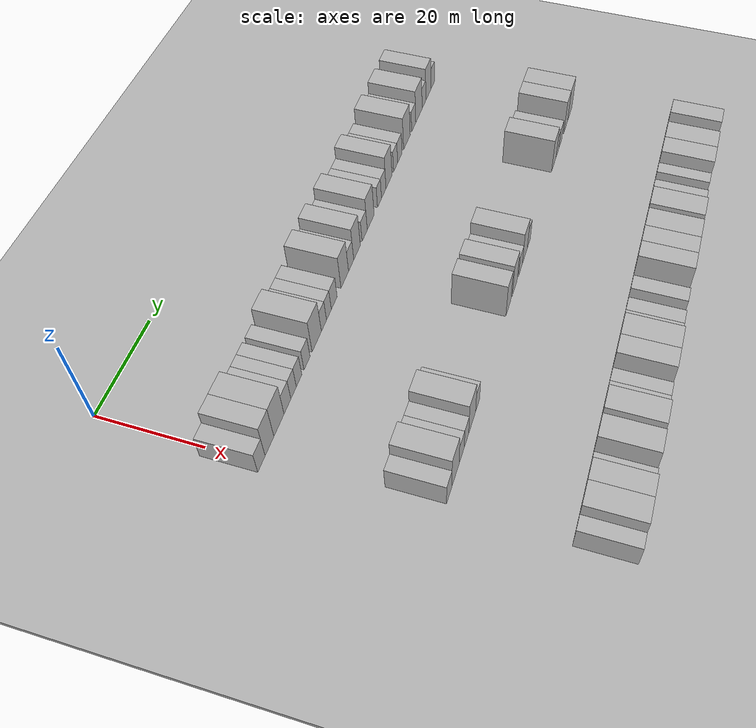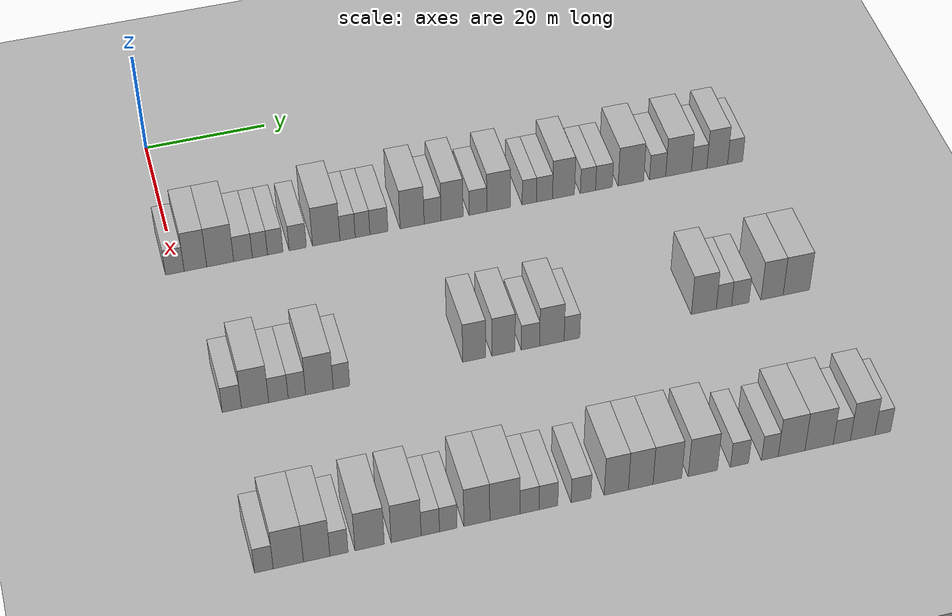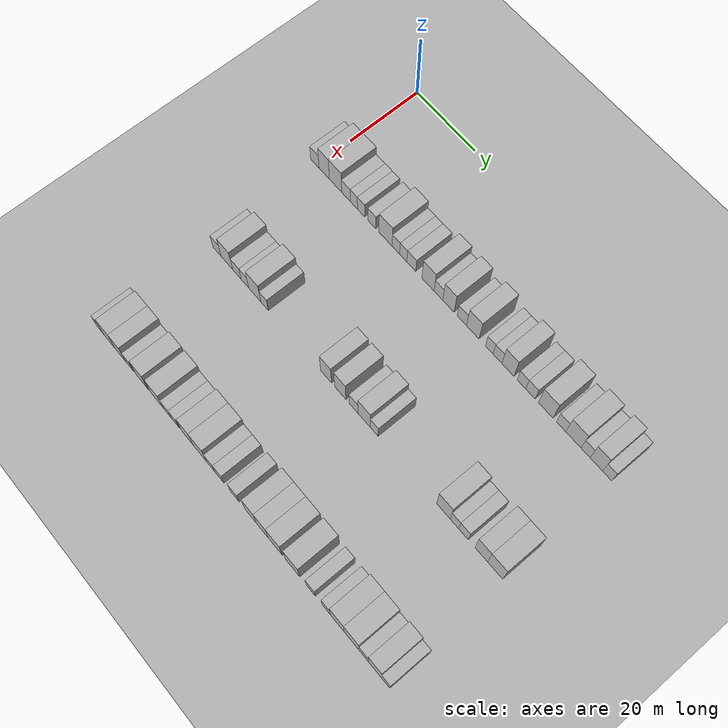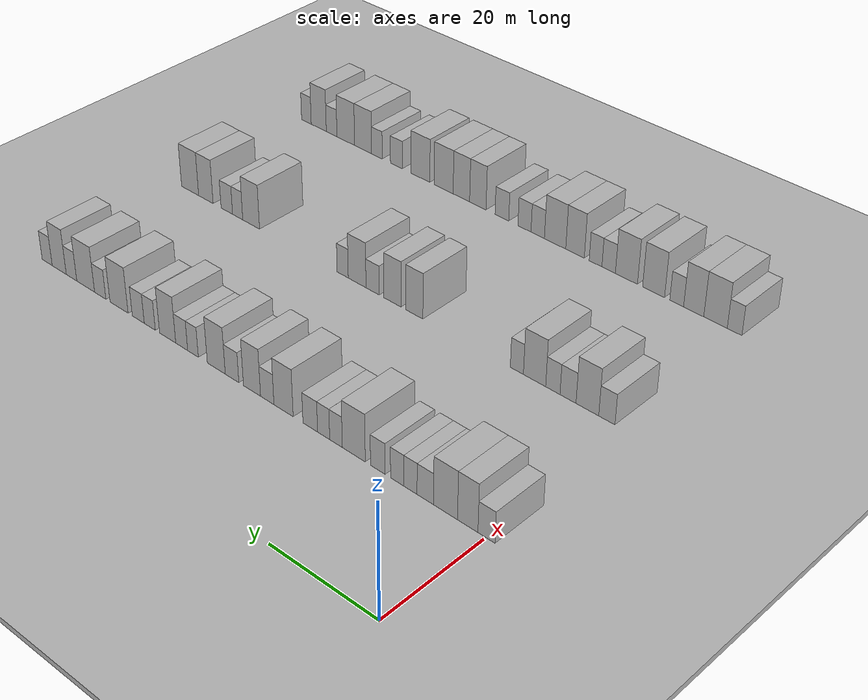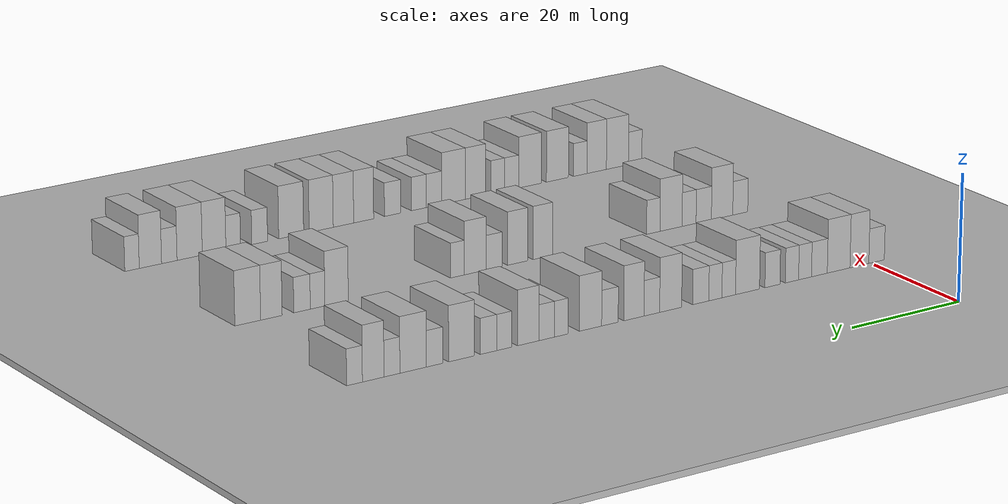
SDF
<sdf version="1.6">
 <world name="default">
  <include><name>ground_plane_1</name><uri>model://HANNAS_ground_plane</uri></include>
  <include>
   <name>ground_plane_2</name>
   <uri>model://HANNAS_ground_plane</uri>
   <pose>100 0 0  0 0 0</pose>
  </include>
  <model name="building_64">
   <static>1</static>
   <pose>25.0000 -0.3750 0 0.000000 0.000000 0.000000</pose>
   <link name="link">
    <pose>0 0 3.00 0 0 0</pose>
    <collision name="collision"><geometry><box><size>10.0000 2.9898 6.0000</size></box></geometry></collision>
    <visual name="visual">
     <cast_shadows>0</cast_shadows>
     <geometry><box><size>10.0000 2.9898 6.0000</size></box></geometry>
     <material>
      <script>
       <uri>model://HANNAS_wall/materials/scripts</uri>
       <uri>model://HANNAS_wall/materials/textures</uri>
       <name>vrc/HANNAS_wall</name>
      </script>
     </material>
    </visual>
   </link>
  </model>
  <model name="building_65">
   <static>1</static>
   <pose>25.0000 2.9271 0 0.000000 0.000000 0.000000</pose>
   <link name="link">
    <pose>0 0 4.50 0 0 0</pose>
    <collision name="collision"><geometry><box><size>10.0000 3.6144 9.0000</size></box></geometry></collision>
    <visual name="visual">
     <cast_shadows>0</cast_shadows>
     <geometry><box><size>10.0000 3.6144 9.0000</size></box></geometry>
     <material>
      <script>
       <uri>model://HANNAS_wall/materials/scripts</uri>
       <uri>model://HANNAS_wall/materials/textures</uri>
       <name>vrc/HANNAS_wall</name>
      </script>
     </material>
    </visual>
   </link>
  </model>
  <model name="building_66">
   <static>1</static>
   <pose>25.0000 6.8996 0 0.000000 0.000000 0.000000</pose>
   <link name="link">
    <pose>0 0 4.50 0 0 0</pose>
    <collision name="collision"><geometry><box><size>10.0000 4.3306 9.0000</size></box></geometry></collision>
    <visual name="visual">
     <cast_shadows>0</cast_shadows>
     <geometry><box><size>10.0000 4.3306 9.0000</size></box></geometry>
     <material>
      <script>
       <uri>model://HANNAS_wall/materials/scripts</uri>
       <uri>model://HANNAS_wall/materials/textures</uri>
       <name>vrc/HANNAS_wall</name>
      </script>
     </material>
    </visual>
   </link>
  </model>
  <model name="building_67">
   <static>1</static>
   <pose>25.0000 10.5646 0 0.000000 0.000000 0.000000</pose>
   <link name="link">
    <pose>0 0 3.00 0 0 0</pose>
    <collision name="collision"><geometry><box><size>10.0000 2.9992 6.0000</size></box></geometry></collision>
    <visual name="visual">
     <cast_shadows>0</cast_shadows>
     <geometry><box><size>10.0000 2.9992 6.0000</size></box></geometry>
     <material>
      <script>
       <uri>model://HANNAS_wall/materials/scripts</uri>
       <uri>model://HANNAS_wall/materials/textures</uri>
       <name>vrc/HANNAS_wall</name>
      </script>
     </material>
    </visual>
   </link>
  </model>
  <model name="building_68">
   <static>1</static>
   <pose>25.0000 13.2816 0 0.000000 0.000000 0.000000</pose>
   <link name="link">
    <pose>0 0 3.00 0 0 0</pose>
    <collision name="collision"><geometry><box><size>10.0000 2.4350 6.0000</size></box></geometry></collision>
    <visual name="visual">
     <cast_shadows>0</cast_shadows>
     <geometry><box><size>10.0000 2.4350 6.0000</size></box></geometry>
     <material>
      <script>
       <uri>model://HANNAS_wall/materials/scripts</uri>
       <uri>model://HANNAS_wall/materials/textures</uri>
       <name>vrc/HANNAS_wall</name>
      </script>
     </material>
    </visual>
   </link>
  </model>
  <model name="building_69">
   <static>1</static>
   <pose>25.0000 15.7519 0 0.000000 0.000000 0.000000</pose>
   <link name="link">
    <pose>0 0 3.00 0 0 0</pose>
    <collision name="collision"><geometry><box><size>10.0000 2.5056 6.0000</size></box></geometry></collision>
    <visual name="visual">
     <cast_shadows>0</cast_shadows>
     <geometry><box><size>10.0000 2.5056 6.0000</size></box></geometry>
     <material>
      <script>
       <uri>model://HANNAS_wall/materials/scripts</uri>
       <uri>model://HANNAS_wall/materials/textures</uri>
       <name>vrc/HANNAS_wall</name>
      </script>
     </material>
    </visual>
   </link>
  </model>
  <model name="building_70">
   <static>1</static>
   <pose>25.0000 19.4091 0 0.000000 0.000000 0.000000</pose>
   <link name="link">
    <pose>0 0 3.00 0 0 0</pose>
    <collision name="collision"><geometry><box><size>10.0000 2.8088 6.0000</size></box></geometry></collision>
    <visual name="visual">
     <cast_shadows>0</cast_shadows>
     <geometry><box><size>10.0000 2.8088 6.0000</size></box></geometry>
     <material>
      <script>
       <uri>model://HANNAS_wall/materials/scripts</uri>
       <uri>model://HANNAS_wall/materials/textures</uri>
       <name>vrc/HANNAS_wall</name>
      </script>
     </material>
    </visual>
   </link>
  </model>
  <model name="building_71">
   <static>1</static>
   <pose>25.0000 24.0457 0 0.000000 0.000000 0.000000</pose>
   <link name="link">
    <pose>0 0 4.50 0 0 0</pose>
    <collision name="collision"><geometry><box><size>10.0000 4.4645 9.0000</size></box></geometry></collision>
    <visual name="visual">
     <cast_shadows>0</cast_shadows>
     <geometry><box><size>10.0000 4.4645 9.0000</size></box></geometry>
     <material>
      <script>
       <uri>model://HANNAS_wall/materials/scripts</uri>
       <uri>model://HANNAS_wall/materials/textures</uri>
       <name>vrc/HANNAS_wall</name>
      </script>
     </material>
    </visual>
   </link>
  </model>
  <model name="building_72">
   <static>1</static>
   <pose>25.0000 27.5315 0 0.000000 0.000000 0.000000</pose>
   <link name="link">
    <pose>0 0 3.00 0 0 0</pose>
    <collision name="collision"><geometry><box><size>10.0000 2.5071 6.0000</size></box></geometry></collision>
    <visual name="visual">
     <cast_shadows>0</cast_shadows>
     <geometry><box><size>10.0000 2.5071 6.0000</size></box></geometry>
     <material>
      <script>
       <uri>model://HANNAS_wall/materials/scripts</uri>
       <uri>model://HANNAS_wall/materials/textures</uri>
       <name>vrc/HANNAS_wall</name>
      </script>
     </material>
    </visual>
   </link>
  </model>
  <model name="building_73">
   <static>1</static>
   <pose>25.0000 29.9911 0 0.000000 0.000000 0.000000</pose>
   <link name="link">
    <pose>0 0 3.00 0 0 0</pose>
    <collision name="collision"><geometry><box><size>10.0000 2.4120 6.0000</size></box></geometry></collision>
    <visual name="visual">
     <cast_shadows>0</cast_shadows>
     <geometry><box><size>10.0000 2.4120 6.0000</size></box></geometry>
     <material>
      <script>
       <uri>model://HANNAS_wall/materials/scripts</uri>
       <uri>model://HANNAS_wall/materials/textures</uri>
       <name>vrc/HANNAS_wall</name>
      </script>
     </material>
    </visual>
   </link>
  </model>
  <model name="building_74">
   <static>1</static>
   <pose>25.0000 32.6815 0 0.000000 0.000000 0.000000</pose>
   <link name="link">
    <pose>0 0 3.00 0 0 0</pose>
    <collision name="collision"><geometry><box><size>10.0000 2.9688 6.0000</size></box></geometry></collision>
    <visual name="visual">
     <cast_shadows>0</cast_shadows>
     <geometry><box><size>10.0000 2.9688 6.0000</size></box></geometry>
     <material>
      <script>
       <uri>model://HANNAS_wall/materials/scripts</uri>
       <uri>model://HANNAS_wall/materials/textures</uri>
       <name>vrc/HANNAS_wall</name>
      </script>
     </material>
    </visual>
   </link>
  </model>
  <model name="building_75">
   <static>1</static>
   <pose>25.0000 38.1623 0 0.000000 0.000000 0.000000</pose>
   <link name="link">
    <pose>0 0 4.50 0 0 0</pose>
    <collision name="collision"><geometry><box><size>10.0000 3.9928 9.0000</size></box></geometry></collision>
    <visual name="visual">
     <cast_shadows>0</cast_shadows>
     <geometry><box><size>10.0000 3.9928 9.0000</size></box></geometry>
     <material>
      <script>
       <uri>model://HANNAS_wall/materials/scripts</uri>
       <uri>model://HANNAS_wall/materials/textures</uri>
       <name>vrc/HANNAS_wall</name>
      </script>
     </material>
    </visual>
   </link>
  </model>
  <model name="building_76">
   <static>1</static>
   <pose>25.0000 41.5678 0 0.000000 0.000000 0.000000</pose>
   <link name="link">
    <pose>0 0 3.00 0 0 0</pose>
    <collision name="collision"><geometry><box><size>10.0000 2.8180 6.0000</size></box></geometry></collision>
    <visual name="visual">
     <cast_shadows>0</cast_shadows>
     <geometry><box><size>10.0000 2.8180 6.0000</size></box></geometry>
     <material>
      <script>
       <uri>model://HANNAS_wall/materials/scripts</uri>
       <uri>model://HANNAS_wall/materials/textures</uri>
       <name>vrc/HANNAS_wall</name>
      </script>
     </material>
    </visual>
   </link>
  </model>
  <model name="building_77">
   <static>1</static>
   <pose>25.0000 44.7982 0 0.000000 0.000000 0.000000</pose>
   <link name="link">
    <pose>0 0 4.50 0 0 0</pose>
    <collision name="collision"><geometry><box><size>10.0000 3.6429 9.0000</size></box></geometry></collision>
    <visual name="visual">
     <cast_shadows>0</cast_shadows>
     <geometry><box><size>10.0000 3.6429 9.0000</size></box></geometry>
     <material>
      <script>
       <uri>model://HANNAS_wall/materials/scripts</uri>
       <uri>model://HANNAS_wall/materials/textures</uri>
       <name>vrc/HANNAS_wall</name>
      </script>
     </material>
    </visual>
   </link>
  </model>
  <model name="building_78">
   <static>1</static>
   <pose>25.0000 49.0955 0 0.000000 0.000000 0.000000</pose>
   <link name="link">
    <pose>0 0 3.00 0 0 0</pose>
    <collision name="collision"><geometry><box><size>10.0000 2.9517 6.0000</size></box></geometry></collision>
    <visual name="visual">
     <cast_shadows>0</cast_shadows>
     <geometry><box><size>10.0000 2.9517 6.0000</size></box></geometry>
     <material>
      <script>
       <uri>model://HANNAS_wall/materials/scripts</uri>
       <uri>model://HANNAS_wall/materials/textures</uri>
       <name>vrc/HANNAS_wall</name>
      </script>
     </material>
    </visual>
   </link>
  </model>
  <model name="building_79">
   <static>1</static>
   <pose>25.0000 52.5528 0 0.000000 0.000000 0.000000</pose>
   <link name="link">
    <pose>0 0 4.50 0 0 0</pose>
    <collision name="collision"><geometry><box><size>10.0000 3.9630 9.0000</size></box></geometry></collision>
    <visual name="visual">
     <cast_shadows>0</cast_shadows>
     <geometry><box><size>10.0000 3.9630 9.0000</size></box></geometry>
     <material>
      <script>
       <uri>model://HANNAS_wall/materials/scripts</uri>
       <uri>model://HANNAS_wall/materials/textures</uri>
       <name>vrc/HANNAS_wall</name>
      </script>
     </material>
    </visual>
   </link>
  </model>
  <model name="building_80">
   <static>1</static>
   <pose>25.0000 57.7374 0 0.000000 0.000000 0.000000</pose>
   <link name="link">
    <pose>0 0 3.00 0 0 0</pose>
    <collision name="collision"><geometry><box><size>10.0000 2.4061 6.0000</size></box></geometry></collision>
    <visual name="visual">
     <cast_shadows>0</cast_shadows>
     <geometry><box><size>10.0000 2.4061 6.0000</size></box></geometry>
     <material>
      <script>
       <uri>model://HANNAS_wall/materials/scripts</uri>
       <uri>model://HANNAS_wall/materials/textures</uri>
       <name>vrc/HANNAS_wall</name>
      </script>
     </material>
    </visual>
   </link>
  </model>
  <model name="building_81">
   <static>1</static>
   <pose>25.0000 60.3006 0 0.000000 0.000000 0.000000</pose>
   <link name="link">
    <pose>0 0 3.00 0 0 0</pose>
    <collision name="collision"><geometry><box><size>10.0000 2.7204 6.0000</size></box></geometry></collision>
    <visual name="visual">
     <cast_shadows>0</cast_shadows>
     <geometry><box><size>10.0000 2.7204 6.0000</size></box></geometry>
     <material>
      <script>
       <uri>model://HANNAS_wall/materials/scripts</uri>
       <uri>model://HANNAS_wall/materials/textures</uri>
       <name>vrc/HANNAS_wall</name>
      </script>
     </material>
    </visual>
   </link>
  </model>
  <model name="building_82">
   <static>1</static>
   <pose>25.0000 63.5257 0 0.000000 0.000000 0.000000</pose>
   <link name="link">
    <pose>0 0 4.50 0 0 0</pose>
    <collision name="collision"><geometry><box><size>10.0000 3.7300 9.0000</size></box></geometry></collision>
    <visual name="visual">
     <cast_shadows>0</cast_shadows>
     <geometry><box><size>10.0000 3.7300 9.0000</size></box></geometry>
     <material>
      <script>
       <uri>model://HANNAS_wall/materials/scripts</uri>
       <uri>model://HANNAS_wall/materials/textures</uri>
       <name>vrc/HANNAS_wall</name>
      </script>
     </material>
    </visual>
   </link>
  </model>
  <model name="building_83">
   <static>1</static>
   <pose>25.0000 67.6874 0 0.000000 0.000000 0.000000</pose>
   <link name="link">
    <pose>0 0 3.00 0 0 0</pose>
    <collision name="collision"><geometry><box><size>10.0000 2.5934 6.0000</size></box></geometry></collision>
    <visual name="visual">
     <cast_shadows>0</cast_shadows>
     <geometry><box><size>10.0000 2.5934 6.0000</size></box></geometry>
     <material>
      <script>
       <uri>model://HANNAS_wall/materials/scripts</uri>
       <uri>model://HANNAS_wall/materials/textures</uri>
       <name>vrc/HANNAS_wall</name>
      </script>
     </material>
    </visual>
   </link>
  </model>
  <model name="building_84">
   <static>1</static>
   <pose>25.0000 70.4088 0 0.000000 0.000000 0.000000</pose>
   <link name="link">
    <pose>0 0 3.00 0 0 0</pose>
    <collision name="collision"><geometry><box><size>10.0000 2.8493 6.0000</size></box></geometry></collision>
    <visual name="visual">
     <cast_shadows>0</cast_shadows>
     <geometry><box><size>10.0000 2.8493 6.0000</size></box></geometry>
     <material>
      <script>
       <uri>model://HANNAS_wall/materials/scripts</uri>
       <uri>model://HANNAS_wall/materials/textures</uri>
       <name>vrc/HANNAS_wall</name>
      </script>
     </material>
    </visual>
   </link>
  </model>
  <model name="building_85">
   <static>1</static>
   <pose>25.0000 75.0283 0 0.000000 0.000000 0.000000</pose>
   <link name="link">
    <pose>0 0 4.50 0 0 0</pose>
    <collision name="collision"><geometry><box><size>10.0000 4.3898 9.0000</size></box></geometry></collision>
    <visual name="visual">
     <cast_shadows>0</cast_shadows>
     <geometry><box><size>10.0000 4.3898 9.0000</size></box></geometry>
     <material>
      <script>
       <uri>model://HANNAS_wall/materials/scripts</uri>
       <uri>model://HANNAS_wall/materials/textures</uri>
       <name>vrc/HANNAS_wall</name>
      </script>
     </material>
    </visual>
   </link>
  </model>
  <model name="building_86">
   <static>1</static>
   <pose>25.0000 79.6189 0 0.000000 0.000000 0.000000</pose>
   <link name="link">
    <pose>0 0 3.00 0 0 0</pose>
    <collision name="collision"><geometry><box><size>10.0000 2.7912 6.0000</size></box></geometry></collision>
    <visual name="visual">
     <cast_shadows>0</cast_shadows>
     <geometry><box><size>10.0000 2.7912 6.0000</size></box></geometry>
     <material>
      <script>
       <uri>model://HANNAS_wall/materials/scripts</uri>
       <uri>model://HANNAS_wall/materials/textures</uri>
       <name>vrc/HANNAS_wall</name>
      </script>
     </material>
    </visual>
   </link>
  </model>
  <model name="building_87">
   <static>1</static>
   <pose>25.0000 83.2427 0 0.000000 0.000000 0.000000</pose>
   <link name="link">
    <pose>0 0 4.50 0 0 0</pose>
    <collision name="collision"><geometry><box><size>10.0000 4.4565 9.0000</size></box></geometry></collision>
    <visual name="visual">
     <cast_shadows>0</cast_shadows>
     <geometry><box><size>10.0000 4.4565 9.0000</size></box></geometry>
     <material>
      <script>
       <uri>model://HANNAS_wall/materials/scripts</uri>
       <uri>model://HANNAS_wall/materials/textures</uri>
       <name>vrc/HANNAS_wall</name>
      </script>
     </material>
    </visual>
   </link>
  </model>
  <model name="building_88">
   <static>1</static>
   <pose>25.0000 86.8031 0 0.000000 0.000000 0.000000</pose>
   <link name="link">
    <pose>0 0 3.00 0 0 0</pose>
    <collision name="collision"><geometry><box><size>10.0000 2.6642 6.0000</size></box></geometry></collision>
    <visual name="visual">
     <cast_shadows>0</cast_shadows>
     <geometry><box><size>10.0000 2.6642 6.0000</size></box></geometry>
     <material>
      <script>
       <uri>model://HANNAS_wall/materials/scripts</uri>
       <uri>model://HANNAS_wall/materials/textures</uri>
       <name>vrc/HANNAS_wall</name>
      </script>
     </material>
    </visual>
   </link>
  </model>
  <model name="building_89">
   <static>1</static>
   <pose>25.0000 89.9428 0 0.000000 0.000000 0.000000</pose>
   <link name="link">
    <pose>0 0 4.50 0 0 0</pose>
    <collision name="collision"><geometry><box><size>10.0000 3.6152 9.0000</size></box></geometry></collision>
    <visual name="visual">
     <cast_shadows>0</cast_shadows>
     <geometry><box><size>10.0000 3.6152 9.0000</size></box></geometry>
     <material>
      <script>
       <uri>model://HANNAS_wall/materials/scripts</uri>
       <uri>model://HANNAS_wall/materials/textures</uri>
       <name>vrc/HANNAS_wall</name>
      </script>
     </material>
    </visual>
   </link>
  </model>
  <model name="building_90">
   <static>1</static>
   <pose>25.0000 93.0597 0 0.000000 0.000000 0.000000</pose>
   <link name="link">
    <pose>0 0 3.00 0 0 0</pose>
    <collision name="collision"><geometry><box><size>10.0000 2.6187 6.0000</size></box></geometry></collision>
    <visual name="visual">
     <cast_shadows>0</cast_shadows>
     <geometry><box><size>10.0000 2.6187 6.0000</size></box></geometry>
     <material>
      <script>
       <uri>model://HANNAS_wall/materials/scripts</uri>
       <uri>model://HANNAS_wall/materials/textures</uri>
       <name>vrc/HANNAS_wall</name>
      </script>
     </material>
    </visual>
   </link>
  </model>
  <model name="building_208">
   <static>1</static>
   <pose>55.0000 2.9555 0 0.000000 0.000000 0.000000</pose>
   <link name="link">
    <pose>0 0 3.00 0 0 0</pose>
    <collision name="collision"><geometry><box><size>10.0000 2.9194 6.0000</size></box></geometry></collision>
    <visual name="visual">
     <cast_shadows>0</cast_shadows>
     <geometry><box><size>10.0000 2.9194 6.0000</size></box></geometry>
     <material>
      <script>
       <uri>model://HANNAS_wall/materials/scripts</uri>
       <uri>model://HANNAS_wall/materials/textures</uri>
       <name>vrc/HANNAS_wall</name>
      </script>
     </material>
    </visual>
   </link>
  </model>
  <model name="building_209">
   <static>1</static>
   <pose>55.0000 6.4868 0 0.000000 0.000000 0.000000</pose>
   <link name="link">
    <pose>0 0 4.50 0 0 0</pose>
    <collision name="collision"><geometry><box><size>10.0000 4.1432 9.0000</size></box></geometry></collision>
    <visual name="visual">
     <cast_shadows>0</cast_shadows>
     <geometry><box><size>10.0000 4.1432 9.0000</size></box></geometry>
     <material>
      <script>
       <uri>model://HANNAS_wall/materials/scripts</uri>
       <uri>model://HANNAS_wall/materials/textures</uri>
       <name>vrc/HANNAS_wall</name>
      </script>
     </material>
    </visual>
   </link>
  </model>
  <model name="building_210">
   <static>1</static>
   <pose>55.0000 10.0409 0 0.000000 0.000000 0.000000</pose>
   <link name="link">
    <pose>0 0 3.00 0 0 0</pose>
    <collision name="collision"><geometry><box><size>10.0000 2.9650 6.0000</size></box></geometry></collision>
    <visual name="visual">
     <cast_shadows>0</cast_shadows>
     <geometry><box><size>10.0000 2.9650 6.0000</size></box></geometry>
     <material>
      <script>
       <uri>model://HANNAS_wall/materials/scripts</uri>
       <uri>model://HANNAS_wall/materials/textures</uri>
       <name>vrc/HANNAS_wall</name>
      </script>
     </material>
    </visual>
   </link>
  </model>
  <model name="building_211">
   <static>1</static>
   <pose>55.0000 12.8654 0 0.000000 0.000000 0.000000</pose>
   <link name="link">
    <pose>0 0 3.00 0 0 0</pose>
    <collision name="collision"><geometry><box><size>10.0000 2.6839 6.0000</size></box></geometry></collision>
    <visual name="visual">
     <cast_shadows>0</cast_shadows>
     <geometry><box><size>10.0000 2.6839 6.0000</size></box></geometry>
     <material>
      <script>
       <uri>model://HANNAS_wall/materials/scripts</uri>
       <uri>model://HANNAS_wall/materials/textures</uri>
       <name>vrc/HANNAS_wall</name>
      </script>
     </material>
    </visual>
   </link>
  </model>
  <model name="building_212">
   <static>1</static>
   <pose>55.0000 16.3259 0 0.000000 0.000000 0.000000</pose>
   <link name="link">
    <pose>0 0 4.50 0 0 0</pose>
    <collision name="collision"><geometry><box><size>10.0000 4.2370 9.0000</size></box></geometry></collision>
    <visual name="visual">
     <cast_shadows>0</cast_shadows>
     <geometry><box><size>10.0000 4.2370 9.0000</size></box></geometry>
     <material>
      <script>
       <uri>model://HANNAS_wall/materials/scripts</uri>
       <uri>model://HANNAS_wall/materials/textures</uri>
       <name>vrc/HANNAS_wall</name>
      </script>
     </material>
    </visual>
   </link>
  </model>
  <model name="building_213">
   <static>1</static>
   <pose>55.0000 19.7122 0 0.000000 0.000000 0.000000</pose>
   <link name="link">
    <pose>0 0 3.00 0 0 0</pose>
    <collision name="collision"><geometry><box><size>10.0000 2.5357 6.0000</size></box></geometry></collision>
    <visual name="visual">
     <cast_shadows>0</cast_shadows>
     <geometry><box><size>10.0000 2.5357 6.0000</size></box></geometry>
     <material>
      <script>
       <uri>model://HANNAS_wall/materials/scripts</uri>
       <uri>model://HANNAS_wall/materials/textures</uri>
       <name>vrc/HANNAS_wall</name>
      </script>
     </material>
    </visual>
   </link>
  </model>
  <model name="building_214">
   <static>1</static>
   <pose>55.0000 40.3926 0 0.000000 0.000000 0.000000</pose>
   <link name="link">
    <pose>0 0 4.50 0 0 0</pose>
    <collision name="collision"><geometry><box><size>10.0000 3.6084 9.0000</size></box></geometry></collision>
    <visual name="visual">
     <cast_shadows>0</cast_shadows>
     <geometry><box><size>10.0000 3.6084 9.0000</size></box></geometry>
     <material>
      <script>
       <uri>model://HANNAS_wall/materials/scripts</uri>
       <uri>model://HANNAS_wall/materials/textures</uri>
       <name>vrc/HANNAS_wall</name>
      </script>
     </material>
    </visual>
   </link>
  </model>
  <model name="building_215">
   <static>1</static>
   <pose>55.0000 45.0282 0 0.000000 0.000000 0.000000</pose>
   <link name="link">
    <pose>0 0 4.50 0 0 0</pose>
    <collision name="collision"><geometry><box><size>10.0000 3.6629 9.0000</size></box></geometry></collision>
    <visual name="visual">
     <cast_shadows>0</cast_shadows>
     <geometry><box><size>10.0000 3.6629 9.0000</size></box></geometry>
     <material>
      <script>
       <uri>model://HANNAS_wall/materials/scripts</uri>
       <uri>model://HANNAS_wall/materials/textures</uri>
       <name>vrc/HANNAS_wall</name>
      </script>
     </material>
    </visual>
   </link>
  </model>
  <model name="building_216">
   <static>1</static>
   <pose>55.0000 49.3088 0 0.000000 0.000000 0.000000</pose>
   <link name="link">
    <pose>0 0 3.00 0 0 0</pose>
    <collision name="collision"><geometry><box><size>10.0000 2.8984 6.0000</size></box></geometry></collision>
    <visual name="visual">
     <cast_shadows>0</cast_shadows>
     <geometry><box><size>10.0000 2.8984 6.0000</size></box></geometry>
     <material>
      <script>
       <uri>model://HANNAS_wall/materials/scripts</uri>
       <uri>model://HANNAS_wall/materials/textures</uri>
       <name>vrc/HANNAS_wall</name>
      </script>
     </material>
    </visual>
   </link>
  </model>
  <model name="building_217">
   <static>1</static>
   <pose>55.0000 52.7203 0 0.000000 0.000000 0.000000</pose>
   <link name="link">
    <pose>0 0 4.50 0 0 0</pose>
    <collision name="collision"><geometry><box><size>10.0000 3.9245 9.0000</size></box></geometry></collision>
    <visual name="visual">
     <cast_shadows>0</cast_shadows>
     <geometry><box><size>10.0000 3.9245 9.0000</size></box></geometry>
     <material>
      <script>
       <uri>model://HANNAS_wall/materials/scripts</uri>
       <uri>model://HANNAS_wall/materials/textures</uri>
       <name>vrc/HANNAS_wall</name>
      </script>
     </material>
    </visual>
   </link>
  </model>
  <model name="building_218">
   <static>1</static>
   <pose>55.0000 55.9283 0 0.000000 0.000000 0.000000</pose>
   <link name="link">
    <pose>0 0 3.00 0 0 0</pose>
    <collision name="collision"><geometry><box><size>10.0000 2.4916 6.0000</size></box></geometry></collision>
    <visual name="visual">
     <cast_shadows>0</cast_shadows>
     <geometry><box><size>10.0000 2.4916 6.0000</size></box></geometry>
     <material>
      <script>
       <uri>model://HANNAS_wall/materials/scripts</uri>
       <uri>model://HANNAS_wall/materials/textures</uri>
       <name>vrc/HANNAS_wall</name>
      </script>
     </material>
    </visual>
   </link>
  </model>
  <model name="building_219">
   <static>1</static>
   <pose>55.0000 77.3012 0 0.000000 0.000000 0.000000</pose>
   <link name="link">
    <pose>0 0 4.50 0 0 0</pose>
    <collision name="collision"><geometry><box><size>10.0000 4.0848 9.0000</size></box></geometry></collision>
    <visual name="visual">
     <cast_shadows>0</cast_shadows>
     <geometry><box><size>10.0000 4.0848 9.0000</size></box></geometry>
     <material>
      <script>
       <uri>model://HANNAS_wall/materials/scripts</uri>
       <uri>model://HANNAS_wall/materials/textures</uri>
       <name>vrc/HANNAS_wall</name>
      </script>
     </material>
    </visual>
   </link>
  </model>
  <model name="building_220">
   <static>1</static>
   <pose>55.0000 80.6009 0 0.000000 0.000000 0.000000</pose>
   <link name="link">
    <pose>0 0 3.00 0 0 0</pose>
    <collision name="collision"><geometry><box><size>10.0000 2.5145 6.0000</size></box></geometry></collision>
    <visual name="visual">
     <cast_shadows>0</cast_shadows>
     <geometry><box><size>10.0000 2.5145 6.0000</size></box></geometry>
     <material>
      <script>
       <uri>model://HANNAS_wall/materials/scripts</uri>
       <uri>model://HANNAS_wall/materials/textures</uri>
       <name>vrc/HANNAS_wall</name>
      </script>
     </material>
    </visual>
   </link>
  </model>
  <model name="building_221">
   <static>1</static>
   <pose>55.0000 83.2811 0 0.000000 0.000000 0.000000</pose>
   <link name="link">
    <pose>0 0 3.00 0 0 0</pose>
    <collision name="collision"><geometry><box><size>10.0000 2.8459 6.0000</size></box></geometry></collision>
    <visual name="visual">
     <cast_shadows>0</cast_shadows>
     <geometry><box><size>10.0000 2.8459 6.0000</size></box></geometry>
     <material>
      <script>
       <uri>model://HANNAS_wall/materials/scripts</uri>
       <uri>model://HANNAS_wall/materials/textures</uri>
       <name>vrc/HANNAS_wall</name>
      </script>
     </material>
    </visual>
   </link>
  </model>
  <model name="building_222">
   <static>1</static>
   <pose>55.0000 88.5380 0 0.000000 0.000000 0.000000</pose>
   <link name="link">
    <pose>0 0 4.50 0 0 0</pose>
    <collision name="collision"><geometry><box><size>10.0000 3.6679 9.0000</size></box></geometry></collision>
    <visual name="visual">
     <cast_shadows>0</cast_shadows>
     <geometry><box><size>10.0000 3.6679 9.0000</size></box></geometry>
     <material>
      <script>
       <uri>model://HANNAS_wall/materials/scripts</uri>
       <uri>model://HANNAS_wall/materials/textures</uri>
       <name>vrc/HANNAS_wall</name>
      </script>
     </material>
    </visual>
   </link>
  </model>
  <model name="building_223">
   <static>1</static>
   <pose>55.0000 92.5644 0 0.000000 0.000000 0.000000</pose>
   <link name="link">
    <pose>0 0 4.50 0 0 0</pose>
    <collision name="collision"><geometry><box><size>10.0000 4.3848 9.0000</size></box></geometry></collision>
    <visual name="visual">
     <cast_shadows>0</cast_shadows>
     <geometry><box><size>10.0000 4.3848 9.0000</size></box></geometry>
     <material>
      <script>
       <uri>model://HANNAS_wall/materials/scripts</uri>
       <uri>model://HANNAS_wall/materials/textures</uri>
       <name>vrc/HANNAS_wall</name>
      </script>
     </material>
    </visual>
   </link>
  </model>
  <model name="building_335">
   <static>1</static>
   <pose>85.0000 1.7165 0 0.000000 0.000000 0.000000</pose>
   <link name="link">
    <pose>0 0 3.00 0 0 0</pose>
    <collision name="collision"><geometry><box><size>10.0000 2.6770 6.0000</size></box></geometry></collision>
    <visual name="visual">
     <cast_shadows>0</cast_shadows>
     <geometry><box><size>10.0000 2.6770 6.0000</size></box></geometry>
     <material>
      <script>
       <uri>model://HANNAS_wall/materials/scripts</uri>
       <uri>model://HANNAS_wall/materials/textures</uri>
       <name>vrc/HANNAS_wall</name>
      </script>
     </material>
    </visual>
   </link>
  </model>
  <model name="building_336">
   <static>1</static>
   <pose>85.0000 5.2297 0 0.000000 0.000000 0.000000</pose>
   <link name="link">
    <pose>0 0 4.50 0 0 0</pose>
    <collision name="collision"><geometry><box><size>10.0000 4.3494 9.0000</size></box></geometry></collision>
    <visual name="visual">
     <cast_shadows>0</cast_shadows>
     <geometry><box><size>10.0000 4.3494 9.0000</size></box></geometry>
     <material>
      <script>
       <uri>model://HANNAS_wall/materials/scripts</uri>
       <uri>model://HANNAS_wall/materials/textures</uri>
       <name>vrc/HANNAS_wall</name>
      </script>
     </material>
    </visual>
   </link>
  </model>
  <model name="building_337">
   <static>1</static>
   <pose>85.0000 9.3063 0 0.000000 0.000000 0.000000</pose>
   <link name="link">
    <pose>0 0 4.50 0 0 0</pose>
    <collision name="collision"><geometry><box><size>10.0000 3.8038 9.0000</size></box></geometry></collision>
    <visual name="visual">
     <cast_shadows>0</cast_shadows>
     <geometry><box><size>10.0000 3.8038 9.0000</size></box></geometry>
     <material>
      <script>
       <uri>model://HANNAS_wall/materials/scripts</uri>
       <uri>model://HANNAS_wall/materials/textures</uri>
       <name>vrc/HANNAS_wall</name>
      </script>
     </material>
    </visual>
   </link>
  </model>
  <model name="building_338">
   <static>1</static>
   <pose>85.0000 12.5265 0 0.000000 0.000000 0.000000</pose>
   <link name="link">
    <pose>0 0 3.00 0 0 0</pose>
    <collision name="collision"><geometry><box><size>10.0000 2.6366 6.0000</size></box></geometry></collision>
    <visual name="visual">
     <cast_shadows>0</cast_shadows>
     <geometry><box><size>10.0000 2.6366 6.0000</size></box></geometry>
     <material>
      <script>
       <uri>model://HANNAS_wall/materials/scripts</uri>
       <uri>model://HANNAS_wall/materials/textures</uri>
       <name>vrc/HANNAS_wall</name>
      </script>
     </material>
    </visual>
   </link>
  </model>
  <model name="building_339">
   <static>1</static>
   <pose>85.0000 16.9809 0 0.000000 0.000000 0.000000</pose>
   <link name="link">
    <pose>0 0 4.50 0 0 0</pose>
    <collision name="collision"><geometry><box><size>10.0000 4.2722 9.0000</size></box></geometry></collision>
    <visual name="visual">
     <cast_shadows>0</cast_shadows>
     <geometry><box><size>10.0000 4.2722 9.0000</size></box></geometry>
     <material>
      <script>
       <uri>model://HANNAS_wall/materials/scripts</uri>
       <uri>model://HANNAS_wall/materials/textures</uri>
       <name>vrc/HANNAS_wall</name>
      </script>
     </material>
    </visual>
   </link>
  </model>
  <model name="building_340">
   <static>1</static>
   <pose>85.0000 22.3069 0 0.000000 0.000000 0.000000</pose>
   <link name="link">
    <pose>0 0 4.50 0 0 0</pose>
    <collision name="collision"><geometry><box><size>10.0000 4.3798 9.0000</size></box></geometry></collision>
    <visual name="visual">
     <cast_shadows>0</cast_shadows>
     <geometry><box><size>10.0000 4.3798 9.0000</size></box></geometry>
     <material>
      <script>
       <uri>model://HANNAS_wall/materials/scripts</uri>
       <uri>model://HANNAS_wall/materials/textures</uri>
       <name>vrc/HANNAS_wall</name>
      </script>
     </material>
    </visual>
   </link>
  </model>
  <model name="building_341">
   <static>1</static>
   <pose>85.0000 25.8518 0 0.000000 0.000000 0.000000</pose>
   <link name="link">
    <pose>0 0 3.00 0 0 0</pose>
    <collision name="collision"><geometry><box><size>10.0000 2.7101 6.0000</size></box></geometry></collision>
    <visual name="visual">
     <cast_shadows>0</cast_shadows>
     <geometry><box><size>10.0000 2.7101 6.0000</size></box></geometry>
     <material>
      <script>
       <uri>model://HANNAS_wall/materials/scripts</uri>
       <uri>model://HANNAS_wall/materials/textures</uri>
       <name>vrc/HANNAS_wall</name>
      </script>
     </material>
    </visual>
   </link>
  </model>
  <model name="building_342">
   <static>1</static>
   <pose>85.0000 28.5021 0 0.000000 0.000000 0.000000</pose>
   <link name="link">
    <pose>0 0 3.00 0 0 0</pose>
    <collision name="collision"><geometry><box><size>10.0000 2.5905 6.0000</size></box></geometry></collision>
    <visual name="visual">
     <cast_shadows>0</cast_shadows>
     <geometry><box><size>10.0000 2.5905 6.0000</size></box></geometry>
     <material>
      <script>
       <uri>model://HANNAS_wall/materials/scripts</uri>
       <uri>model://HANNAS_wall/materials/textures</uri>
       <name>vrc/HANNAS_wall</name>
      </script>
     </material>
    </visual>
   </link>
  </model>
  <model name="building_343">
   <static>1</static>
   <pose>85.0000 32.7121 0 0.000000 0.000000 0.000000</pose>
   <link name="link">
    <pose>0 0 4.50 0 0 0</pose>
    <collision name="collision"><geometry><box><size>10.0000 3.8295 9.0000</size></box></geometry></collision>
    <visual name="visual">
     <cast_shadows>0</cast_shadows>
     <geometry><box><size>10.0000 3.8295 9.0000</size></box></geometry>
     <material>
      <script>
       <uri>model://HANNAS_wall/materials/scripts</uri>
       <uri>model://HANNAS_wall/materials/textures</uri>
       <name>vrc/HANNAS_wall</name>
      </script>
     </material>
    </visual>
   </link>
  </model>
  <model name="building_344">
   <static>1</static>
   <pose>85.0000 36.8680 0 0.000000 0.000000 0.000000</pose>
   <link name="link">
    <pose>0 0 4.50 0 0 0</pose>
    <collision name="collision"><geometry><box><size>10.0000 4.4822 9.0000</size></box></geometry></collision>
    <visual name="visual">
     <cast_shadows>0</cast_shadows>
     <geometry><box><size>10.0000 4.4822 9.0000</size></box></geometry>
     <material>
      <script>
       <uri>model://HANNAS_wall/materials/scripts</uri>
       <uri>model://HANNAS_wall/materials/textures</uri>
       <name>vrc/HANNAS_wall</name>
      </script>
     </material>
    </visual>
   </link>
  </model>
  <model name="building_345">
   <static>1</static>
   <pose>85.0000 40.5401 0 0.000000 0.000000 0.000000</pose>
   <link name="link">
    <pose>0 0 3.00 0 0 0</pose>
    <collision name="collision"><geometry><box><size>10.0000 2.8621 6.0000</size></box></geometry></collision>
    <visual name="visual">
     <cast_shadows>0</cast_shadows>
     <geometry><box><size>10.0000 2.8621 6.0000</size></box></geometry>
     <material>
      <script>
       <uri>model://HANNAS_wall/materials/scripts</uri>
       <uri>model://HANNAS_wall/materials/textures</uri>
       <name>vrc/HANNAS_wall</name>
      </script>
     </material>
    </visual>
   </link>
  </model>
  <model name="building_346">
   <static>1</static>
   <pose>85.0000 43.3769 0 0.000000 0.000000 0.000000</pose>
   <link name="link">
    <pose>0 0 3.00 0 0 0</pose>
    <collision name="collision"><geometry><box><size>10.0000 2.8116 6.0000</size></box></geometry></collision>
    <visual name="visual">
     <cast_shadows>0</cast_shadows>
     <geometry><box><size>10.0000 2.8116 6.0000</size></box></geometry>
     <material>
      <script>
       <uri>model://HANNAS_wall/materials/scripts</uri>
       <uri>model://HANNAS_wall/materials/textures</uri>
       <name>vrc/HANNAS_wall</name>
      </script>
     </material>
    </visual>
   </link>
  </model>
  <model name="building_347">
   <static>1</static>
   <pose>85.0000 48.2808 0 0.000000 0.000000 0.000000</pose>
   <link name="link">
    <pose>0 0 3.00 0 0 0</pose>
    <collision name="collision"><geometry><box><size>10.0000 2.9962 6.0000</size></box></geometry></collision>
    <visual name="visual">
     <cast_shadows>0</cast_shadows>
     <geometry><box><size>10.0000 2.9962 6.0000</size></box></geometry>
     <material>
      <script>
       <uri>model://HANNAS_wall/materials/scripts</uri>
       <uri>model://HANNAS_wall/materials/textures</uri>
       <name>vrc/HANNAS_wall</name>
      </script>
     </material>
    </visual>
   </link>
  </model>
  <model name="building_348">
   <static>1</static>
   <pose>85.0000 53.6163 0 0.000000 0.000000 0.000000</pose>
   <link name="link">
    <pose>0 0 4.50 0 0 0</pose>
    <collision name="collision"><geometry><box><size>10.0000 3.6748 9.0000</size></box></geometry></collision>
    <visual name="visual">
     <cast_shadows>0</cast_shadows>
     <geometry><box><size>10.0000 3.6748 9.0000</size></box></geometry>
     <material>
      <script>
       <uri>model://HANNAS_wall/materials/scripts</uri>
       <uri>model://HANNAS_wall/materials/textures</uri>
       <name>vrc/HANNAS_wall</name>
      </script>
     </material>
    </visual>
   </link>
  </model>
  <model name="building_349">
   <static>1</static>
   <pose>85.0000 57.3231 0 0.000000 0.000000 0.000000</pose>
   <link name="link">
    <pose>0 0 4.50 0 0 0</pose>
    <collision name="collision"><geometry><box><size>10.0000 3.7387 9.0000</size></box></geometry></collision>
    <visual name="visual">
     <cast_shadows>0</cast_shadows>
     <geometry><box><size>10.0000 3.7387 9.0000</size></box></geometry>
     <material>
      <script>
       <uri>model://HANNAS_wall/materials/scripts</uri>
       <uri>model://HANNAS_wall/materials/textures</uri>
       <name>vrc/HANNAS_wall</name>
      </script>
     </material>
    </visual>
   </link>
  </model>
  <model name="building_350">
   <static>1</static>
   <pose>85.0000 61.3805 0 0.000000 0.000000 0.000000</pose>
   <link name="link">
    <pose>0 0 4.50 0 0 0</pose>
    <collision name="collision"><geometry><box><size>10.0000 4.3760 9.0000</size></box></geometry></collision>
    <visual name="visual">
     <cast_shadows>0</cast_shadows>
     <geometry><box><size>10.0000 4.3760 9.0000</size></box></geometry>
     <material>
      <script>
       <uri>model://HANNAS_wall/materials/scripts</uri>
       <uri>model://HANNAS_wall/materials/textures</uri>
       <name>vrc/HANNAS_wall</name>
      </script>
     </material>
    </visual>
   </link>
  </model>
  <model name="building_351">
   <static>1</static>
   <pose>85.0000 66.8173 0 0.000000 0.000000 0.000000</pose>
   <link name="link">
    <pose>0 0 4.50 0 0 0</pose>
    <collision name="collision"><geometry><box><size>10.0000 4.4975 9.0000</size></box></geometry></collision>
    <visual name="visual">
     <cast_shadows>0</cast_shadows>
     <geometry><box><size>10.0000 4.4975 9.0000</size></box></geometry>
     <material>
      <script>
       <uri>model://HANNAS_wall/materials/scripts</uri>
       <uri>model://HANNAS_wall/materials/textures</uri>
       <name>vrc/HANNAS_wall</name>
      </script>
     </material>
    </visual>
   </link>
  </model>
  <model name="building_352">
   <static>1</static>
   <pose>85.0000 72.4762 0 0.000000 0.000000 0.000000</pose>
   <link name="link">
    <pose>0 0 3.00 0 0 0</pose>
    <collision name="collision"><geometry><box><size>10.0000 2.8202 6.0000</size></box></geometry></collision>
    <visual name="visual">
     <cast_shadows>0</cast_shadows>
     <geometry><box><size>10.0000 2.8202 6.0000</size></box></geometry>
     <material>
      <script>
       <uri>model://HANNAS_wall/materials/scripts</uri>
       <uri>model://HANNAS_wall/materials/textures</uri>
       <name>vrc/HANNAS_wall</name>
      </script>
     </material>
    </visual>
   </link>
  </model>
  <model name="building_353">
   <static>1</static>
   <pose>85.0000 77.1842 0 0.000000 0.000000 0.000000</pose>
   <link name="link">
    <pose>0 0 3.00 0 0 0</pose>
    <collision name="collision"><geometry><box><size>10.0000 2.5959 6.0000</size></box></geometry></collision>
    <visual name="visual">
     <cast_shadows>0</cast_shadows>
     <geometry><box><size>10.0000 2.5959 6.0000</size></box></geometry>
     <material>
      <script>
       <uri>model://HANNAS_wall/materials/scripts</uri>
       <uri>model://HANNAS_wall/materials/textures</uri>
       <name>vrc/HANNAS_wall</name>
      </script>
     </material>
    </visual>
   </link>
  </model>
  <model name="building_354">
   <static>1</static>
   <pose>85.0000 80.5700 0 0.000000 0.000000 0.000000</pose>
   <link name="link">
    <pose>0 0 4.50 0 0 0</pose>
    <collision name="collision"><geometry><box><size>10.0000 4.1758 9.0000</size></box></geometry></collision>
    <visual name="visual">
     <cast_shadows>0</cast_shadows>
     <geometry><box><size>10.0000 4.1758 9.0000</size></box></geometry>
     <material>
      <script>
       <uri>model://HANNAS_wall/materials/scripts</uri>
       <uri>model://HANNAS_wall/materials/textures</uri>
       <name>vrc/HANNAS_wall</name>
      </script>
     </material>
    </visual>
   </link>
  </model>
  <model name="building_355">
   <static>1</static>
   <pose>85.0000 84.8712 0 0.000000 0.000000 0.000000</pose>
   <link name="link">
    <pose>0 0 4.50 0 0 0</pose>
    <collision name="collision"><geometry><box><size>10.0000 4.4265 9.0000</size></box></geometry></collision>
    <visual name="visual">
     <cast_shadows>0</cast_shadows>
     <geometry><box><size>10.0000 4.4265 9.0000</size></box></geometry>
     <material>
      <script>
       <uri>model://HANNAS_wall/materials/scripts</uri>
       <uri>model://HANNAS_wall/materials/textures</uri>
       <name>vrc/HANNAS_wall</name>
      </script>
     </material>
    </visual>
   </link>
  </model>
  <model name="building_356">
   <static>1</static>
   <pose>85.0000 88.4352 0 0.000000 0.000000 0.000000</pose>
   <link name="link">
    <pose>0 0 3.00 0 0 0</pose>
    <collision name="collision"><geometry><box><size>10.0000 2.7015 6.0000</size></box></geometry></collision>
    <visual name="visual">
     <cast_shadows>0</cast_shadows>
     <geometry><box><size>10.0000 2.7015 6.0000</size></box></geometry>
     <material>
      <script>
       <uri>model://HANNAS_wall/materials/scripts</uri>
       <uri>model://HANNAS_wall/materials/textures</uri>
       <name>vrc/HANNAS_wall</name>
      </script>
     </material>
    </visual>
   </link>
  </model>
  <model name="building_357">
   <static>1</static>
   <pose>85.0000 91.7206 0 0.000000 0.000000 0.000000</pose>
   <link name="link">
    <pose>0 0 4.50 0 0 0</pose>
    <collision name="collision"><geometry><box><size>10.0000 3.8693 9.0000</size></box></geometry></collision>
    <visual name="visual">
     <cast_shadows>0</cast_shadows>
     <geometry><box><size>10.0000 3.8693 9.0000</size></box></geometry>
     <material>
      <script>
       <uri>model://HANNAS_wall/materials/scripts</uri>
       <uri>model://HANNAS_wall/materials/textures</uri>
       <name>vrc/HANNAS_wall</name>
      </script>
     </material>
    </visual>
   </link>
  </model>
  <model name="building_358">
   <static>1</static>
   <pose>85.0000 94.9045 0 0.000000 0.000000 0.000000</pose>
   <link name="link">
    <pose>0 0 3.00 0 0 0</pose>
    <collision name="collision"><geometry><box><size>10.0000 2.4987 6.0000</size></box></geometry></collision>
    <visual name="visual">
     <cast_shadows>0</cast_shadows>
     <geometry><box><size>10.0000 2.4987 6.0000</size></box></geometry>
     <material>
      <script>
       <uri>model://HANNAS_wall/materials/scripts</uri>
       <uri>model://HANNAS_wall/materials/textures</uri>
       <name>vrc/HANNAS_wall</name>
      </script>
     </material>
    </visual>
   </link>
  </model>
 </world>
</sdf>
